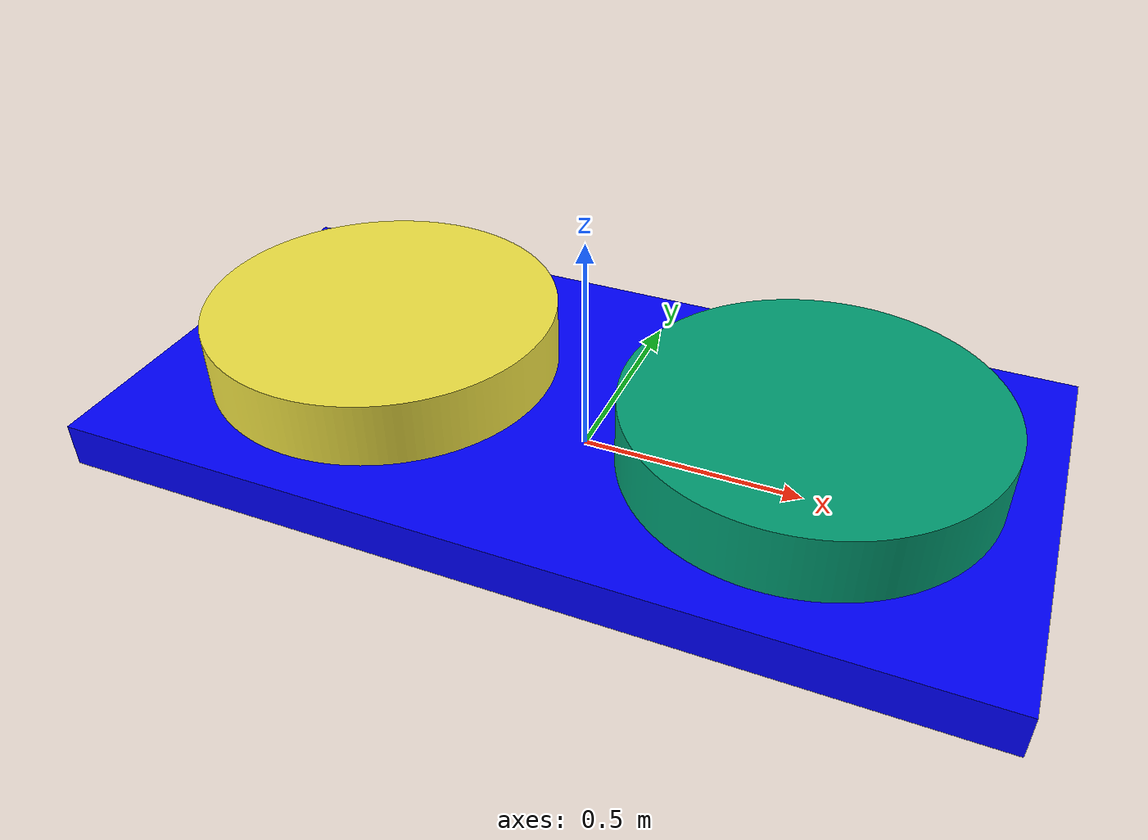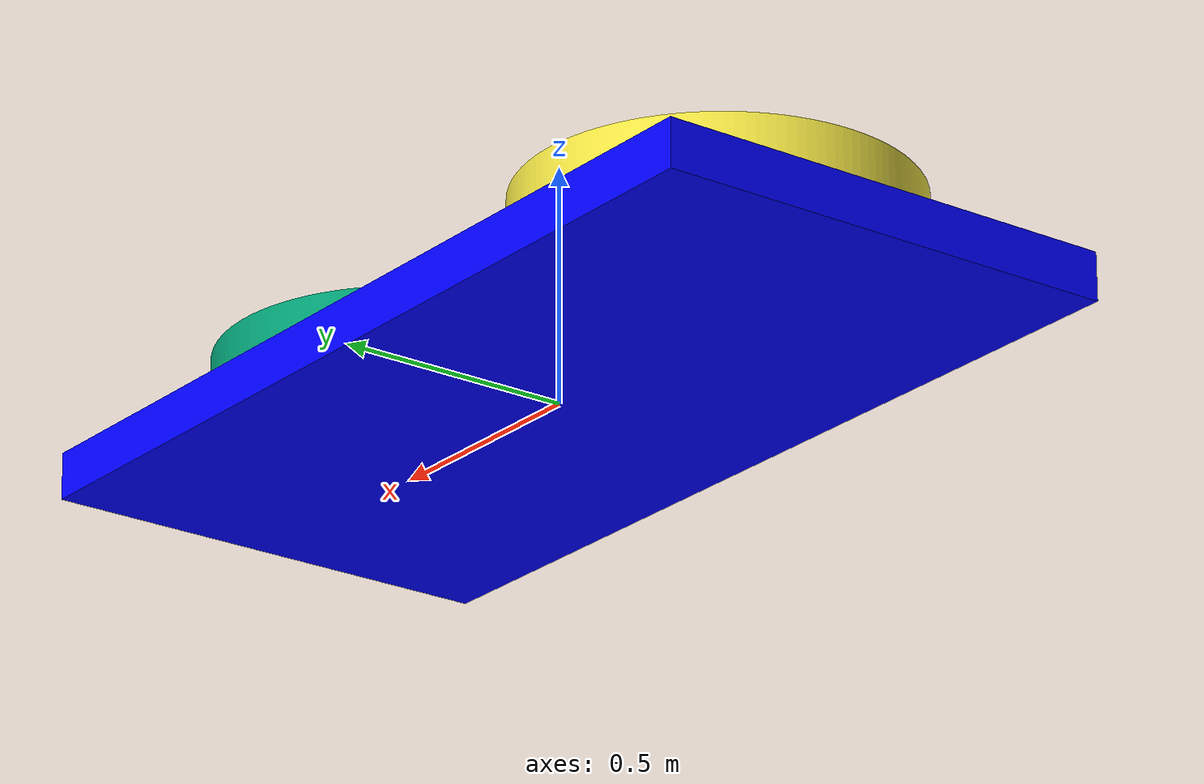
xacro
<?xml version="1.0"?>
<robot name="stepit" xmlns:xacro="http://ros.org/wiki/xacro">
  <xacro:include filename="$(find stepit_description)/urdf/stepit.xacro" />
  <xacro:include filename="$(find stepit_description)/urdf/stepit.ros2_control.xacro" />

  <xacro:stepit />
  <xacro:stepit_ros2_control name="IgnitionSystem" />

  <xacro:arg name="simulation_controllers" default="$(find stepit_description)/config/controllers.yaml" />
  <gazebo>
    <plugin filename="libign_ros2_control-system.so" name="ign_ros2_control::IgnitionROS2ControlPlugin">
      <parameters>$(arg simulation_controllers)</parameters>
      <controller_manager_node_name>controller_manager</controller_manager_node_name>
    </plugin>
  </gazebo>

</robot>

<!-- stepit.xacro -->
<robot xmlns:xacro="http://ros.org/wiki/xacro">

  <xacro:macro name="stepit">

    <material name="base_link_material">
      <color rgba="0 0 1 1" />
    </material>

    <link name="world" />

    <link name="base_link">
      <inertial>
        <origin xyz="0 0 0" rpy="0 0 0" />
        <mass value="0.1" />
        <inertia ixx="0.0001" ixy="0.0" ixz="0.0" iyy="0.0001" iyz="0.0" izz="0.0001" />
      </inertial>
      <visual name="base_link_visual">
        <origin xyz="0.0 0 0.05" rpy="0 0 0" />
        <geometry>
          <box size="2 1 0.1" />
        </geometry>
        <material name="base_link_material" />
      </visual>
    </link>

    <link name="link1">
      <inertial>
        <origin xyz="0 0 0" rpy="0 0 0" />
        <mass value="0.1" />
        <inertia ixx="0.0001" ixy="0.0" ixz="0.0" iyy="0.0001" iyz="0.0" izz="0.0001" />
      </inertial>
      <visual name="link1_visual">
        <origin xyz="0.0 0.0 0.0" rpy="0 0 0" />
        <geometry>
          <mesh filename="file://$(find stepit_description)/meshes/cylinder.dae" scale="1 1 1" />
        </geometry>
      </visual>
    </link>

    <link name="link2">
      <inertial>
        <origin xyz="0 0 0" rpy="0 0 0" />
        <mass value="0.1" />
        <inertia ixx="0.0001" ixy="0.0" ixz="0.0" iyy="0.0001" iyz="0.0" izz="0.0001" />
      </inertial>
      <visual name="link2_visual">
        <origin xyz="0.0 0.0 0.0" rpy="0 0 0" />
        <geometry>
          <mesh filename="file://$(find stepit_description)/meshes/cylinder.dae" scale="1 1 1" />
        </geometry>
      </visual>
    </link>

    <joint name="base_link_to_world" type="fixed">
      <parent link="world" />
      <child link="base_link" />
      <axis xyz="0 0 1" />
    </joint>

    <joint name="joint1" type="revolute">
      <parent link="base_link" />
      <child link="link1" />
      <origin xyz="0.5 0.0 0.15" rpy="0 0 0" />
      <axis xyz="0 0 1" />
      <limit lower="-3.14159265358979" upper="3.14159265358979" effort="0.0" velocity="0.0" />
    </joint>

    <joint name="joint2" type="revolute">
      <parent link="base_link" />
      <child link="link2" />
      <origin xyz="-0.5 0.0 0.15" rpy="0 0 0" />
      <axis xyz="0 0 1" />
      <limit lower="-3.14159265358979" upper="3.14159265358979" effort="0.0" velocity="0.0" />
    </joint>

  </xacro:macro>
</robot>
